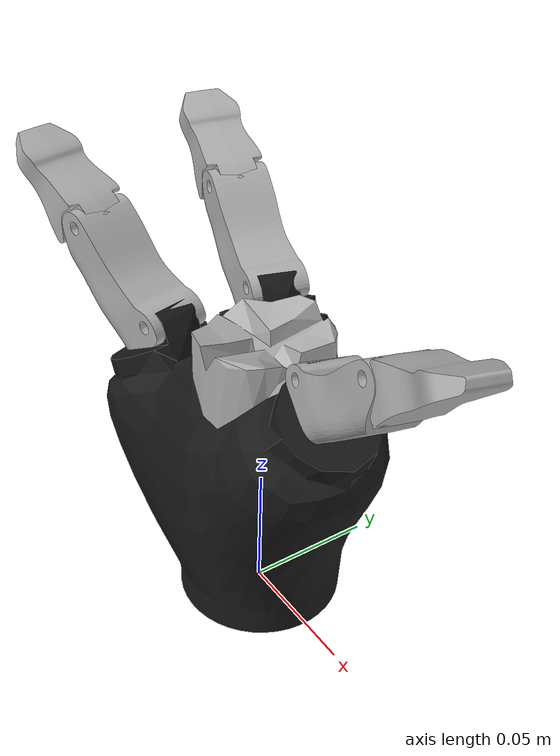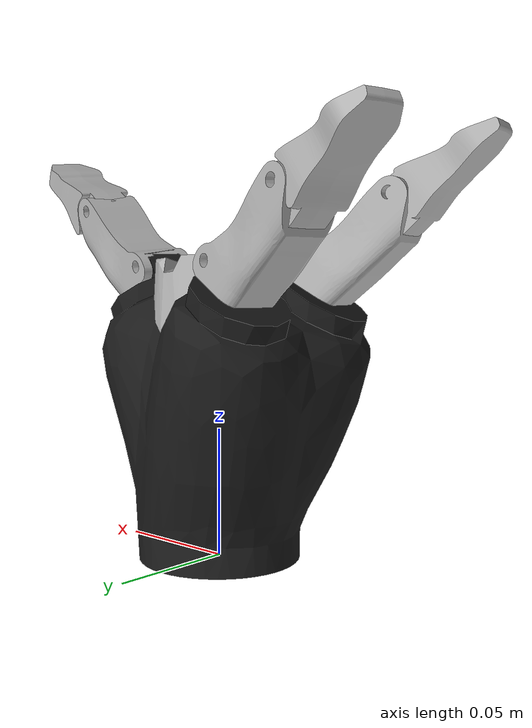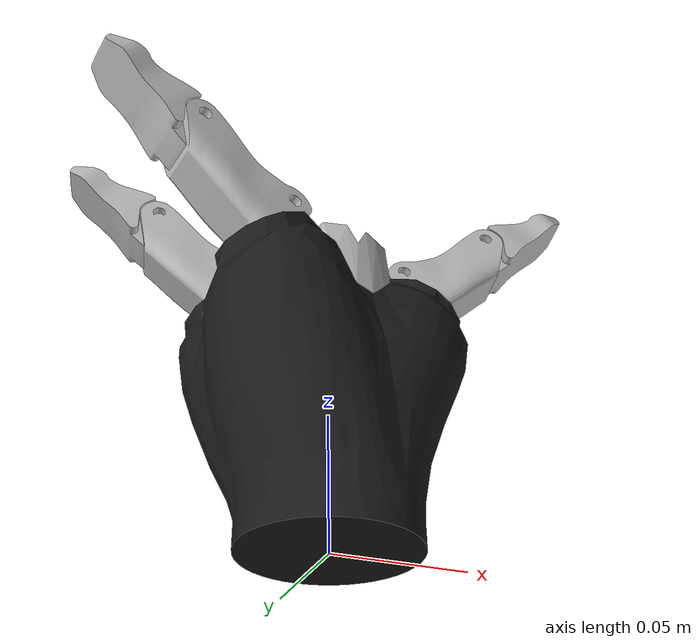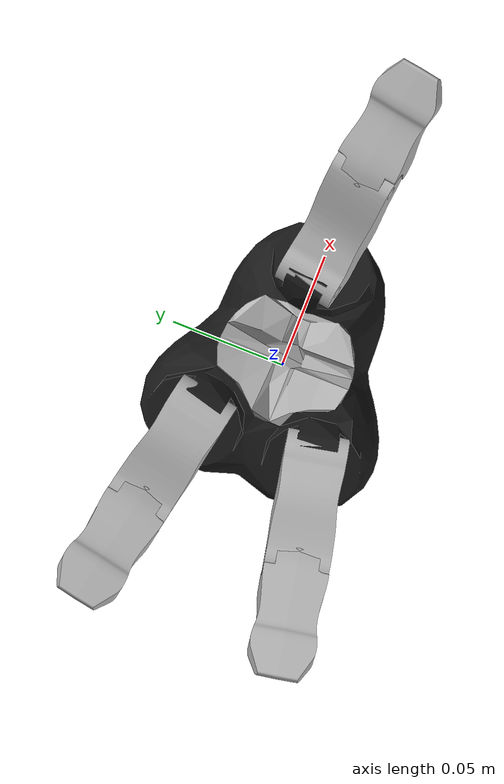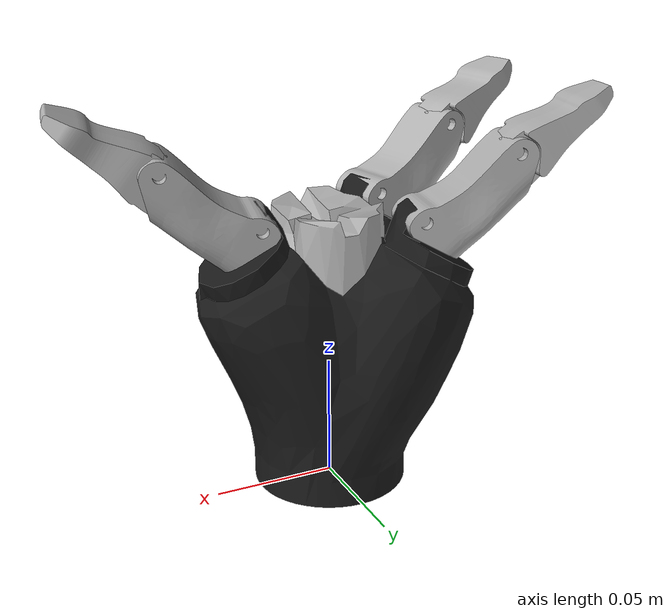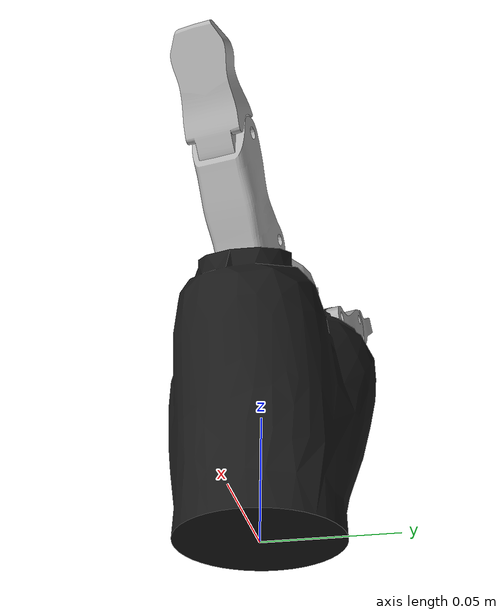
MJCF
<mujoco model="jaco_hand">
  <compiler angle="radian" meshdir="meshes_decimated/"/>
  <include file="common.xml"/>

  <asset>
    <mesh name="hand_3finger_main" file="hand_3finger_main.stl"/>
    <mesh name="hand_3finger_insert" file="hand_3finger_insert.stl"/>
    <mesh name="finger_proximal" file="finger_proximal.stl"/>
    <mesh name="finger_distal" file="finger_distal.stl"/>
  </asset>

  <default>
    <geom type="mesh" material="dark_gray" condim="3" contype="3" conaffinity="2"/>
    <joint type="hinge" limited="true" range="0.15 1.35" frictionloss="0.1" armature="0.1" damping="0.75"/>
    <default class="finger">
      <geom type="mesh" material="light_gray" condim="4"/>
      <default class="finger_proximal">
        <geom mesh="finger_proximal" mass="0.0255204"/>
      </default>
      <default class="finger_distal">
        <geom mesh="finger_distal" mass="0.0132655"/>
      </default>
    </default>
  </default>

  <worldbody>
    <body name="hand" quat="0. 0.70710678118 0.70710678118 0.">
      <site name="gripsite" pos="0 -0.0001 -.159" quat="0 0.70710678118 0.70710678118 0"/>
      <site name="pinchsite" pos="0.015 0.0024 -0.193" quat="0 0.70710678118 0.70710678118 0"/>
      <geom name="link_6_main" mesh="hand_3finger_main" mass="0.54719"/>
      <geom name="link_6_insert" mesh="hand_3finger_insert" material="light_gray" mass="0"/>
      <body name="b_finger_1" pos="0.00279 0.03126 -0.11467" quat="0.24396 -0.63159 -0.38818 0.62521" childclass="finger_proximal">
        <joint name="finger_1"/>
        <geom name="finger_knuckle_1"/>
        <body name="b_finger_tip_1" pos="0.044 -0.003 0" childclass="finger_distal">
          <geom name="finger_tip_1"/>
        </body>
      </body>
      <body name="b_finger_2" pos="-0.02226 -0.02707 -0.11482" quat="0.601679 -0.254671 0.659653 -0.37146" childclass="finger_proximal">
        <joint name="finger_2"/>
        <geom name="finger_knuckle_2"/>
        <body name="b_finger_tip_2" pos="0.044 -0.003 0" childclass="finger_distal">
          <geom name="finger_tip_2"/>
        </body>
      </body>
      <body name="b_finger_3" pos="0.02226 -0.02707 -0.11482" quat="0.659653 -0.37146 0.601679 -0.254671" childclass="finger_proximal">
        <joint name="finger_3"/>
        <geom name="finger_knuckle_3"/>
        <body name="b_finger_tip_3" pos="0.044 -0.003 0" childclass="finger_distal">
          <geom name="finger_tip_3"/>
        </body>
      </body>
    </body>
  </worldbody>

  <!-- Prevents contacts between the hand and the fingers when the hand is a direct child of the worldbody. -->
  <contact>
    <exclude body1='hand' body2='b_finger_1'/>
    <exclude body1='hand' body2='b_finger_2'/>
    <exclude body1='hand' body2='b_finger_3'/>
  </contact>

</mujoco>

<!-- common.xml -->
<mujoco>
  <asset>
    <material name="dark_gray" rgba="0.1 0.1 0.1 1"/>
    <material name="light_gray" rgba="0.7 0.7 0.7 1"/>
    <material name="reference_site" rgba="1 0 0 0.5"/>
  </asset>
  <default>
    <!-- These values yield contacts that are significantly harder than with MuJoCo's defaults. -->
    <geom solimp="0.99 0.999 0.001" solref="0.01 1"/>
    <site type="sphere" size="0.01" material="reference_site" group="4"/>
  </default>
</mujoco>
